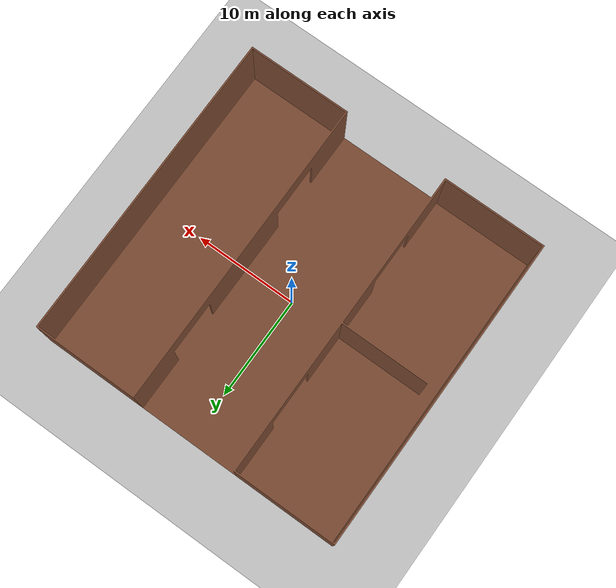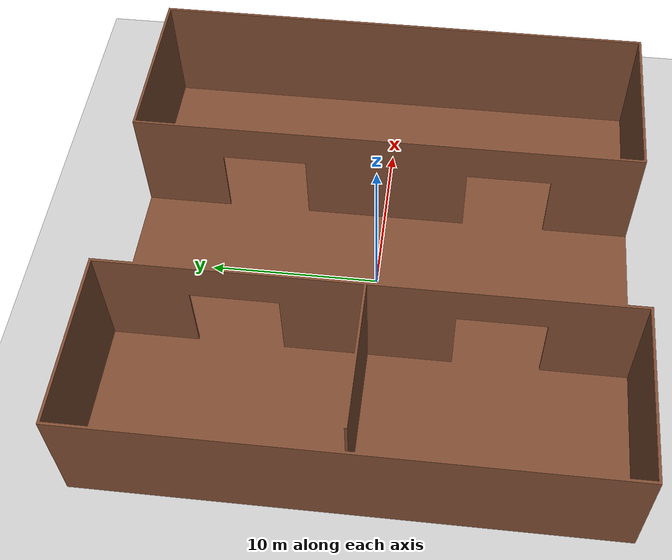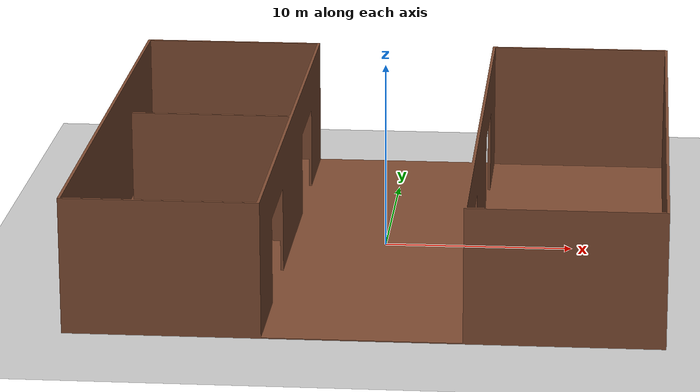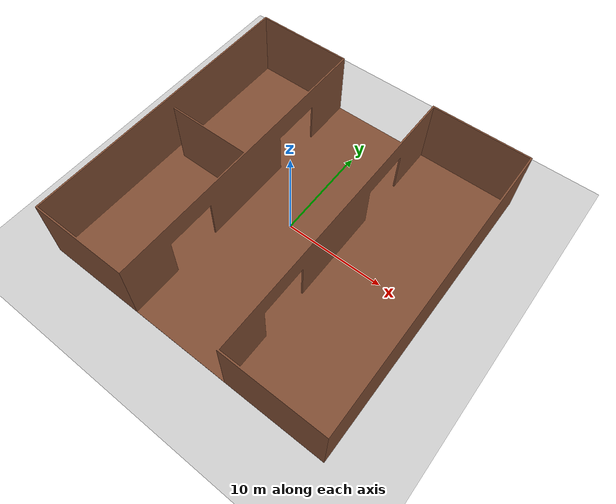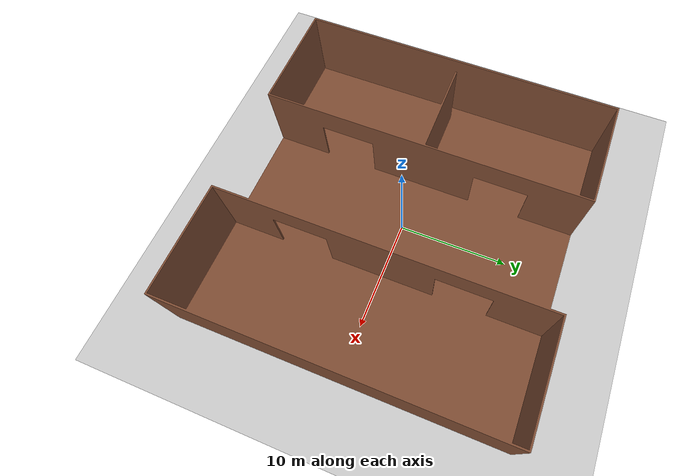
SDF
<sdf version='1.10'>
  <world name='empty'>
    <scene>
      <shadows>false</shadows>
      <ambient>0.400000006 0.400000006 0.400000006 1</ambient>
      <background>0.699999988 0.699999988 0.699999988 1</background>
    </scene>

    <physics name='1ms' type='ignored'>
      <max_step_size>0.001</max_step_size>
      <real_time_factor>1.0</real_time_factor>
      <real_time_update_rate>25</real_time_update_rate>
    </physics>
    <plugin name='gz::sim::systems::Physics' filename='gz-sim-physics-system'/>
    <plugin name='gz::sim::systems::UserCommands' filename='gz-sim-user-commands-system'/>
    <plugin name='gz::sim::systems::SceneBroadcaster' filename='gz-sim-scene-broadcaster-system'/>
    <plugin name='gz::sim::systems::Sensors' filename='gz-sim-sensors-system'>
      <render_engine>ogre2</render_engine>
    </plugin>
    <plugin name='gz::sim::systems::Contact' filename='gz-sim-contact-system'/>
    <gravity>0 0 -9.8000000000000007</gravity>
    <magnetic_field>5.5644999999999998e-06 2.2875799999999999e-05 -4.2388400000000002e-05</magnetic_field>
    <atmosphere type='adiabatic'/>
    <model name='ground_plane'>

      <static>true</static>
      <link name='link'>
        <collision name='collision'>
          <geometry>
            <plane>
              <normal>0 0 1</normal>
              <size>100 100</size>
            </plane>
          </geometry>
          <surface>
            <friction>
              <ode/>
            </friction>
            <bounce/>
            <contact/>
          </surface>
        </collision>
        <visual name='visual'>
          <geometry>
            <plane>
              <normal>0 0 1</normal>
              <size>100 100</size>
            </plane>
          </geometry>
          <material>
            <ambient>0.800000012 0.800000012 0.800000012 1</ambient>
            <diffuse>0.800000012 0.800000012 0.800000012 1</diffuse>
            <specular>0.800000012 0.800000012 0.800000012 1</specular>
          </material>
        </visual>
        <pose>0 0 0 0 0 0</pose>
        <inertial>
          <pose>0 0 0 0 0 0</pose>
          <mass>1</mass>
          <inertia>
            <ixx>1</ixx>
            <ixy>0</ixy>
            <ixz>0</ixz>
            <iyy>1</iyy>
            <iyz>0</iyz>
            <izz>1</izz>
          </inertia>
        </inertial>
        <enable_wind>false</enable_wind>
      </link>
      <pose>0 0 0 0 0 0</pose>
    </model>

    <include>
      <uri>model://my_world_model</uri>
            <pose>0 0 0 0 0 0</pose>
    </include>

  <light name='sun' type='directional'>
      <pose>0 0 10 0 0 0</pose>
      <cast_shadows>true</cast_shadows>
      <intensity>1</intensity>
      <direction>-0.5 0.10000000000000001 -0.90000000000000002</direction>
      <diffuse>0.800000012 0.800000012 0.800000012 1</diffuse>
      <specular>0.200000003 0.200000003 0.200000003 1</specular>
      <attenuation>
        <range>1000</range>
        <linear>0.01</linear>
        <constant>0.90000000000000002</constant>
        <quadratic>0.001</quadratic>
      </attenuation>
      <spot>
        <inner_angle>0</inner_angle>
        <outer_angle>0</outer_angle>
        <falloff>0</falloff>
      </spot>
  </light>
  </world>
</sdf>

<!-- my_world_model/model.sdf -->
<sdf version="1.10">
  <model name="my_world_model">
        <pose>0.0 -0.0 0.02 0.0 0.0 0.0</pose>
    <static>true</static>
    <link name="link">
      <visual name="visual">
        <geometry>
          <mesh>
            <uri>model://my_world_model/meshes/World.obj</uri>
            <scale>0.001 0.001 0.001</scale>
          </mesh>

        </geometry>
                  <material>
            <ambient>0.8 0.8 0.8 1</ambient>
            <diffuse>0.5 0.3 0.2 1</diffuse>
            <specular>0.8 0.8 0.8 1</specular>

          </material>
      </visual>
      <collision name="collision">
        <geometry>
          <mesh>
            <uri>model://my_world_model/meshes/World.obj</uri>
            <scale>0.001 0.001 0.001</scale>
          </mesh>
        </geometry>
      </collision>
    </link>
  </model>
</sdf>
